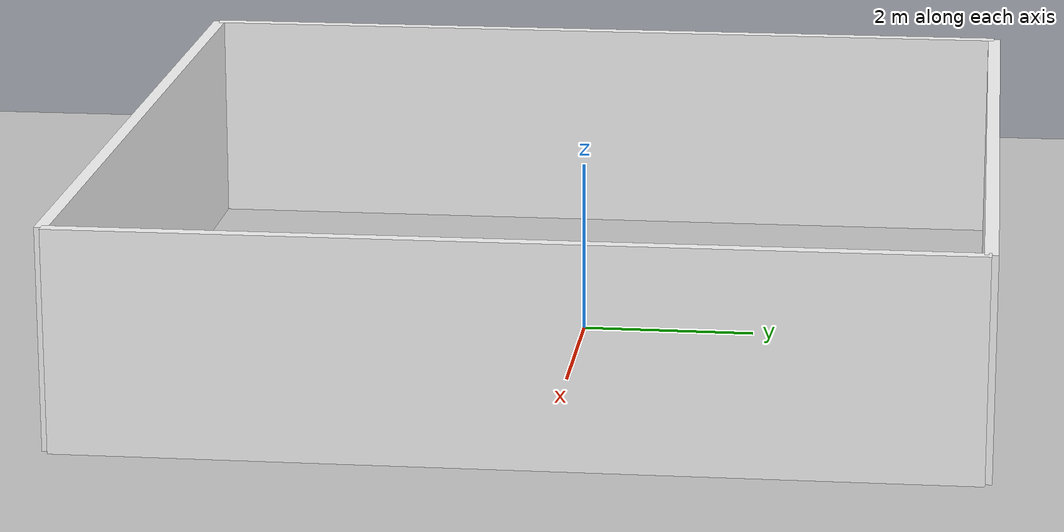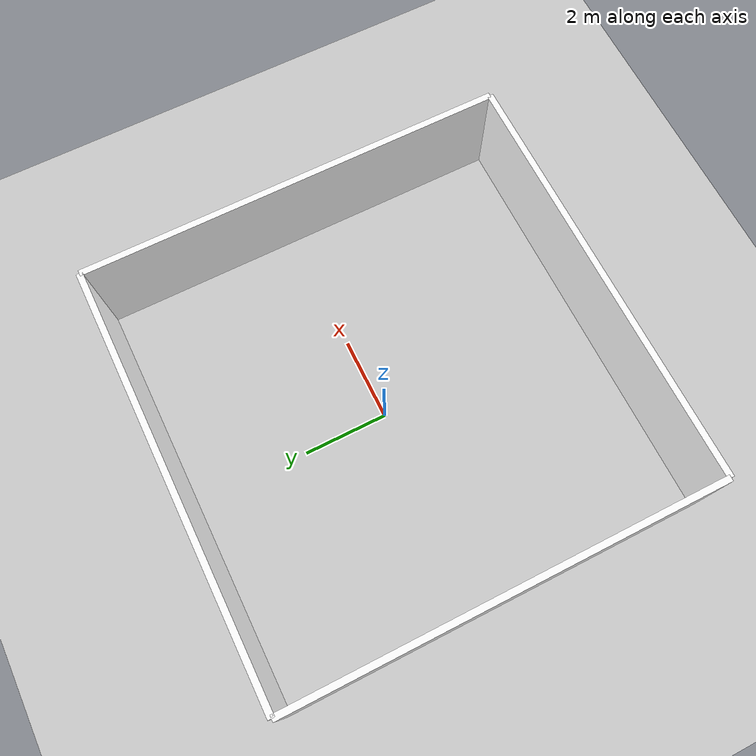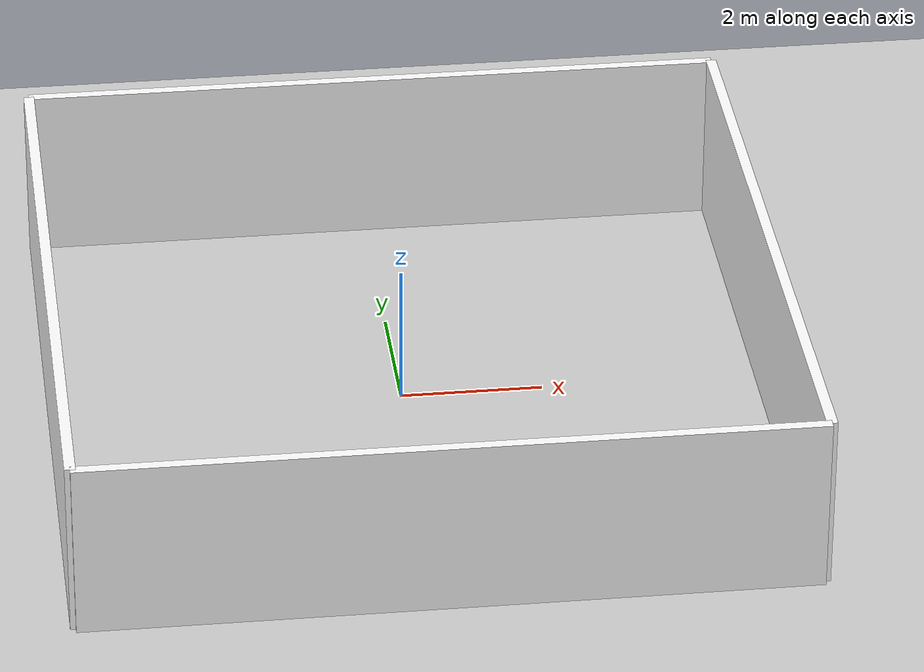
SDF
<sdf version="1.6">
 <world name="default">
  <model name="ground_plane">
   <static>1</static>
   <link name="link">
    <collision name="collision">
     <geometry><plane><normal>0 0 1</normal><size>100 100</size></plane></geometry>
     <surface><friction><ode><mu>100</mu><mu2>50</mu2></ode></friction></surface>
    </collision>
    <visual name="visual">
     <cast_shadows>0</cast_shadows>
     <geometry><plane><normal>0 0 1</normal><size>100 100</size></plane></geometry>
     <material>
      <script><uri>file://media/materials/scripts/gazebo.material</uri><name>Gazebo/Grey</name></script>
     </material>
    </visual>
   </link>
  </model>
  <light name="sun" type="directional">
   <pose>0 0 10 0 -0 0</pose>
   <diffuse>0.8 0.8 0.8 1</diffuse>
   <specular>0.1 0.1 0.1 1</specular>
   <attenuation>
    <range>1000</range>
    <constant>0.9</constant>
    <linear>0.01</linear>
    <quadratic>0.001</quadratic>
   </attenuation>
   <direction>-0.5 0.5 -1</direction>
  </light>
  <gravity>0 0 -9.8</gravity>
  <magnetic_field>6e-06 2.3e-05 -4.2e-05</magnetic_field>
  <atmosphere type="adiabatic"/>
  <physics name="default_physics" default="0" type="ode">
   <max_step_size>0.001</max_step_size>
   <real_time_factor>1</real_time_factor>
   <real_time_update_rate>1000</real_time_update_rate>
  </physics>
  <scene><ambient>0.4 0.4 0.4 1</ambient><background>0.7 0.7 0.7 1</background><shadows>1</shadows></scene>
  <spherical_coordinates>
   <surface_model>EARTH_WGS84</surface_model>
   <latitude_deg>0</latitude_deg>
   <longitude_deg>0</longitude_deg>
   <elevation>0</elevation>
   <heading_deg>0</heading_deg>
  </spherical_coordinates>
  <model name="rwLab_10m">
   <link name="Wall_12">
    <pose>-5 0 0 0 -0 1.5708</pose>
    <inertial>
     <mass>1</mass>
     <inertia><ixx>1</ixx><ixy>0</ixy><ixz>0</ixz><iyy>1</iyy><iyz>0</iyz><izz>1</izz></inertia>
    </inertial>
    <visual name="Wall_12_Visual">
     <pose>0 0 1.25 0 -0 0</pose>
     <geometry><box><size>10 0.15 2.5</size></box></geometry>
     <material>
      <script>
       <uri>model://rwLab_10m/materials/scripts</uri>
       <uri>model://rwLab_10m/materials/textures</uri>
       <name>rw/ceramic</name>
      </script>
      <ambient>1 1 1 1</ambient>
      <diffuse>1 1 1 1</diffuse>
      <specular>0 0 0 1</specular>
      <emissive>0 0 0 1</emissive>
      <shader type="vertex"><normal_map>__default__</normal_map></shader>
     </material>
     <meta><layer>0</layer></meta>
    </visual>
    <collision name="Wall_12_Collision">
     <pose>0 0 1.25 0 -0 0</pose>
     <geometry><box><size>10 0.15 2.5</size></box></geometry>
     <surface>
      <friction>
       <ode><mu>1</mu><mu2>1</mu2><fdir1>0 0 0</fdir1><slip1>0</slip1><slip2>0</slip2></ode>
       <torsional>
        <coefficient>1</coefficient>
        <patch_radius>0</patch_radius>
        <surface_radius>0</surface_radius>
        <use_patch_radius>1</use_patch_radius>
        <ode><slip>0</slip></ode>
       </torsional>
      </friction>
      <bounce><restitution_coefficient>0</restitution_coefficient><threshold>1e+06</threshold></bounce>
      <contact>
       <collide_without_contact>0</collide_without_contact>
       <collide_without_contact_bitmask>1</collide_without_contact_bitmask>
       <collide_bitmask>1</collide_bitmask>
       <ode>
        <soft_cfm>0</soft_cfm>
        <soft_erp>0.2</soft_erp>
        <kp>1e+13</kp>
        <kd>1</kd>
        <max_vel>0.01</max_vel>
        <min_depth>0</min_depth>
       </ode>
       <bullet>
        <split_impulse>1</split_impulse>
        <split_impulse_penetration_threshold>-0.01</split_impulse_penetration_threshold>
        <soft_cfm>0</soft_cfm>
        <soft_erp>0.2</soft_erp>
        <kp>1e+13</kp>
        <kd>1</kd>
       </bullet>
      </contact>
     </surface>
    </collision>
   </link>
   <link name="Wall_13">
    <pose>0 5 0 0 -0 0</pose>
    <inertial>
     <mass>1</mass>
     <inertia><ixx>1</ixx><ixy>0</ixy><ixz>0</ixz><iyy>1</iyy><iyz>0</iyz><izz>1</izz></inertia>
    </inertial>
    <visual name="Wall_13_Visual">
     <pose>0 0 1.25 0 -0 0</pose>
     <geometry><box><size>10 0.15 2.5</size></box></geometry>
     <material>
      <script>
       <uri>model://rwLab_10m/materials/scripts</uri>
       <uri>model://rwLab_10m/materials/textures</uri>
       <name>rw/brick</name>
      </script>
      <ambient>1 1 1 1</ambient>
      <diffuse>1 1 1 1</diffuse>
      <specular>0 0 0 1</specular>
      <emissive>0 0 0 1</emissive>
      <shader type="vertex"><normal_map>__default__</normal_map></shader>
     </material>
     <meta><layer>0</layer></meta>
    </visual>
    <collision name="Wall_13_Collision">
     <pose>0 0 1.25 0 -0 0</pose>
     <geometry><box><size>10 0.15 2.5</size></box></geometry>
     <surface>
      <friction>
       <ode><mu>1</mu><mu2>1</mu2><fdir1>0 0 0</fdir1><slip1>0</slip1><slip2>0</slip2></ode>
       <torsional>
        <coefficient>1</coefficient>
        <patch_radius>0</patch_radius>
        <surface_radius>0</surface_radius>
        <use_patch_radius>1</use_patch_radius>
        <ode><slip>0</slip></ode>
       </torsional>
      </friction>
      <bounce><restitution_coefficient>0</restitution_coefficient><threshold>1e+06</threshold></bounce>
      <contact>
       <collide_without_contact>0</collide_without_contact>
       <collide_without_contact_bitmask>1</collide_without_contact_bitmask>
       <collide_bitmask>1</collide_bitmask>
       <ode>
        <soft_cfm>0</soft_cfm>
        <soft_erp>0.2</soft_erp>
        <kp>1e+13</kp>
        <kd>1</kd>
        <max_vel>0.01</max_vel>
        <min_depth>0</min_depth>
       </ode>
       <bullet>
        <split_impulse>1</split_impulse>
        <split_impulse_penetration_threshold>-0.01</split_impulse_penetration_threshold>
        <soft_cfm>0</soft_cfm>
        <soft_erp>0.2</soft_erp>
        <kp>1e+13</kp>
        <kd>1</kd>
       </bullet>
      </contact>
     </surface>
    </collision>
   </link>
   <link name="Wall_14">
    <pose>5 0 0 0 0 -1.5708</pose>
    <inertial>
     <mass>1</mass>
     <inertia><ixx>1</ixx><ixy>0</ixy><ixz>0</ixz><iyy>1</iyy><iyz>0</iyz><izz>1</izz></inertia>
    </inertial>
    <visual name="Wall_14_Visual">
     <pose>0 0 1.25 0 -0 0</pose>
     <geometry><box><size>10 0.15 2.5</size></box></geometry>
     <material>
      <script>
       <uri>model://rwLab_10m/materials/scripts</uri>
       <uri>model://rwLab_10m/materials/textures</uri>
       <name>rw/hex</name>
      </script>
      <ambient>1 1 1 1</ambient>
      <diffuse>1 1 1 1</diffuse>
      <specular>0 0 0 1</specular>
      <emissive>0 0 0 1</emissive>
      <shader type="vertex"><normal_map>__default__</normal_map></shader>
     </material>
     <meta><layer>0</layer></meta>
    </visual>
    <collision name="Wall_14_Collision">
     <pose>0 0 1.25 0 -0 0</pose>
     <geometry><box><size>10 0.15 2.5</size></box></geometry>
     <surface>
      <friction>
       <ode><mu>1</mu><mu2>1</mu2><fdir1>0 0 0</fdir1><slip1>0</slip1><slip2>0</slip2></ode>
       <torsional>
        <coefficient>1</coefficient>
        <patch_radius>0</patch_radius>
        <surface_radius>0</surface_radius>
        <use_patch_radius>1</use_patch_radius>
        <ode><slip>0</slip></ode>
       </torsional>
      </friction>
      <bounce><restitution_coefficient>0</restitution_coefficient><threshold>1e+06</threshold></bounce>
      <contact>
       <collide_without_contact>0</collide_without_contact>
       <collide_without_contact_bitmask>1</collide_without_contact_bitmask>
       <collide_bitmask>1</collide_bitmask>
       <ode>
        <soft_cfm>0</soft_cfm>
        <soft_erp>0.2</soft_erp>
        <kp>1e+13</kp>
        <kd>1</kd>
        <max_vel>0.01</max_vel>
        <min_depth>0</min_depth>
       </ode>
       <bullet>
        <split_impulse>1</split_impulse>
        <split_impulse_penetration_threshold>-0.01</split_impulse_penetration_threshold>
        <soft_cfm>0</soft_cfm>
        <soft_erp>0.2</soft_erp>
        <kp>1e+13</kp>
        <kd>1</kd>
       </bullet>
      </contact>
     </surface>
    </collision>
   </link>
   <link name="Wall_15">
    <pose>0 -5 0 0 -0 3.14159</pose>
    <inertial>
     <mass>1</mass>
     <inertia><ixx>1</ixx><ixy>0</ixy><ixz>0</ixz><iyy>1</iyy><iyz>0</iyz><izz>1</izz></inertia>
    </inertial>
    <visual name="Wall_15_Visual">
     <pose>0 0 1.25 0 -0 0</pose>
     <geometry><box><size>10 0.15 2.5</size></box></geometry>
     <material>
      <script>
       <uri>model://rwLab_10m/materials/scripts</uri>
       <uri>model://rwLab_10m/materials/textures</uri>
       <name>rw/stone</name>
      </script>
      <ambient>1 1 1 1</ambient>
      <diffuse>1 1 1 1</diffuse>
      <specular>0 0 0 1</specular>
      <emissive>0 0 0 1</emissive>
      <shader type="vertex"><normal_map>__default__</normal_map></shader>
     </material>
     <meta><layer>0</layer></meta>
    </visual>
    <collision name="Wall_15_Collision">
     <pose>0 0 1.25 0 -0 0</pose>
     <geometry><box><size>10 0.15 2.5</size></box></geometry>
     <surface>
      <friction>
       <ode><mu>1</mu><mu2>1</mu2><fdir1>0 0 0</fdir1><slip1>0</slip1><slip2>0</slip2></ode>
       <torsional>
        <coefficient>1</coefficient>
        <patch_radius>0</patch_radius>
        <surface_radius>0</surface_radius>
        <use_patch_radius>1</use_patch_radius>
        <ode><slip>0</slip></ode>
       </torsional>
      </friction>
      <bounce><restitution_coefficient>0</restitution_coefficient><threshold>1e+06</threshold></bounce>
      <contact>
       <collide_without_contact>0</collide_without_contact>
       <collide_without_contact_bitmask>1</collide_without_contact_bitmask>
       <collide_bitmask>1</collide_bitmask>
       <ode>
        <soft_cfm>0</soft_cfm>
        <soft_erp>0.2</soft_erp>
        <kp>1e+13</kp>
        <kd>1</kd>
        <max_vel>0.01</max_vel>
        <min_depth>0</min_depth>
       </ode>
       <bullet>
        <split_impulse>1</split_impulse>
        <split_impulse_penetration_threshold>-0.01</split_impulse_penetration_threshold>
        <soft_cfm>0</soft_cfm>
        <soft_erp>0.2</soft_erp>
        <kp>1e+13</kp>
        <kd>1</kd>
       </bullet>
      </contact>
     </surface>
    </collision>
   </link>
   <static>1</static>
   <pose>0.103447 -0.260335 0 0 -0 0</pose>
  </model>
 </world>
</sdf>
